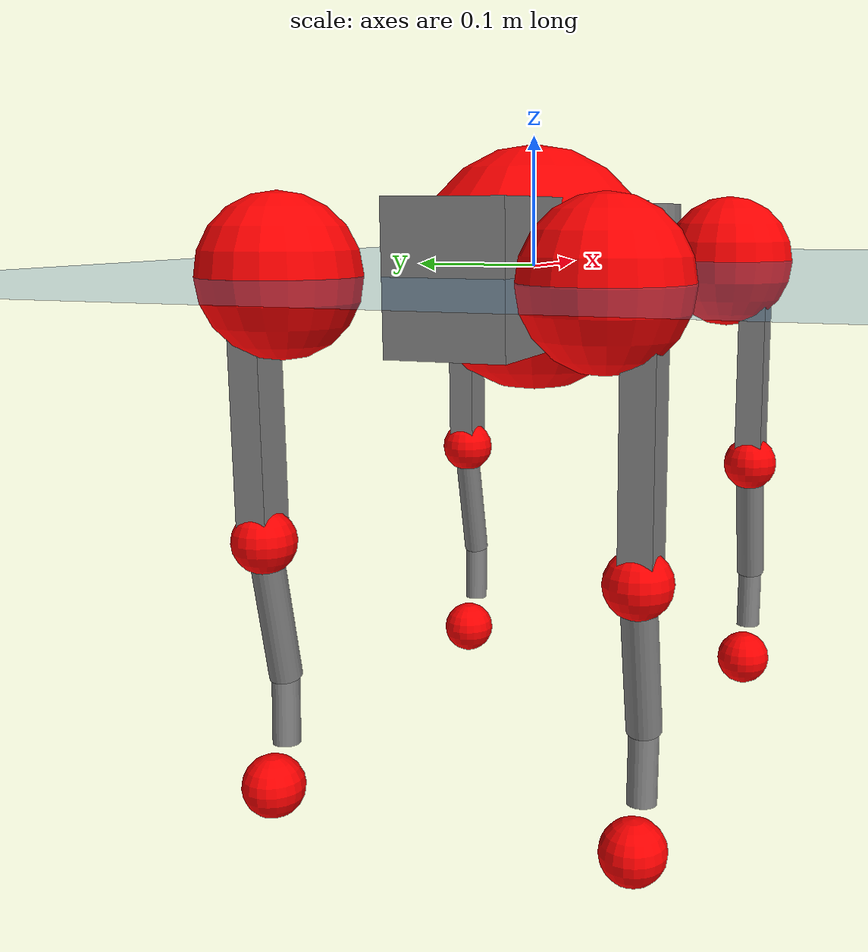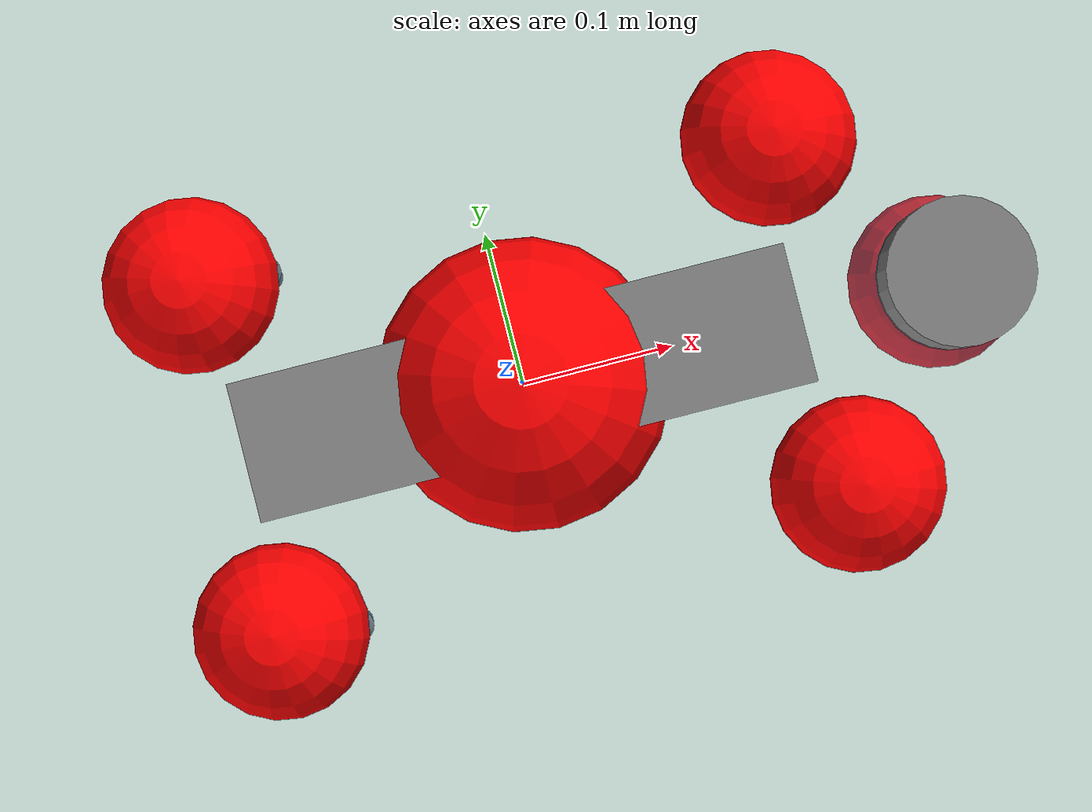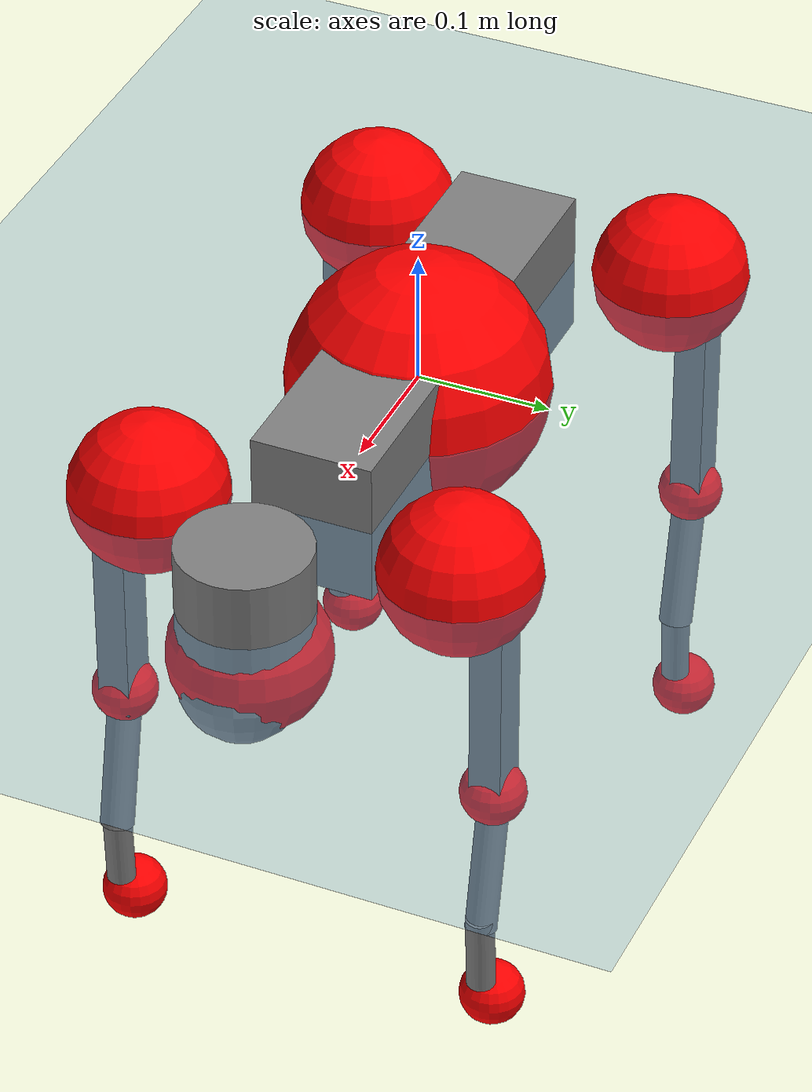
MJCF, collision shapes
<mujoco model="go2">
  <compiler angle="radian" assetdir="assets" balanceinertia="true" inertiafromgeom="false"/>

  <option timestep="0.005" density="1.2" viscosity="2e-05"/>

  <size nkey="1"/>

  <visual>
    <quality shadowsize="8192"/>
    <map shadowclip="0.5"/>
  </visual>

  <default>
    <default class="/">
      <geom contype="0" conaffinity="0" group="1" solref="-1000 -80"/>
      <site size="0.01 0.005 0.005" group="5"/>
      <general forcelimited="true" biastype="affine" gainprm="20" biasprm="0 -20 -0.5"/>
      <default class="go2">
        <joint armature="0.01" damping="0.01" frictionloss="0.2"/>
        <geom condim="1" margin="0.001"/>
        <default class="visual">
          <geom type="mesh" group="2"/>
        </default>
        <default class="collision">
          <geom group="3"/>
          <default class="foot">
            <geom size="0.022 0 0" condim="6" priority="1" friction="0.8 0.02 0.01" solimp="0.015 1 0.022"/>
          </default>
        </default>
        <default class="reward_collision_sphere">
          <geom group="5" rgba="1 0 0 1"/>
        </default>
      </default>
    </default>
  </default>

  <asset>
    <texture type="skybox" colorspace="auto" name="//unnamed_texture_0" builtin="gradient" rgb1="0.95 0.95 0.95" rgb2="0.95 0.95 0.95" width="100" height="600"/>
    <texture type="2d" colorspace="auto" name="texplane" builtin="checker" rgb1="0.345 0.575 0.748" rgb2="0.345 0.575 0.748" markrgb="1 1 1" width="512" height="512"/>
    <material name="MatPlane" class="/" texture="texplane" texuniform="true" texrepeat="2 2" specular="0.9"/>
    <material name="metal" class="/" rgba="0.9 0.95 0.95 1"/>
    <material name="black" class="/" rgba="0 0 0 1"/>
    <material name="white" class="/"/>
    <material name="gray" class="/" rgba="0.671705 0.692426 0.77427 1"/>
    <mesh name="base_0" class="/" file="base_0.obj"/>
    <mesh name="base_1" class="/" file="base_1.obj"/>
    <mesh name="base_2" class="/" file="base_2.obj"/>
    <mesh name="base_3" class="/" file="base_3.obj"/>
    <mesh name="base_4" class="/" file="base_4.obj"/>
    <mesh name="hip_0" class="/" file="hip_0.obj"/>
    <mesh name="hip_1" class="/" file="hip_1.obj"/>
    <mesh name="thigh_0" class="/" file="thigh_0.obj"/>
    <mesh name="thigh_1" class="/" file="thigh_1.obj"/>
    <mesh name="thigh_mirror_0" class="/" file="thigh_mirror_0.obj"/>
    <mesh name="thigh_mirror_1" class="/" file="thigh_mirror_1.obj"/>
    <mesh name="calf_0" class="/" file="calf_0.obj"/>
    <mesh name="calf_1" class="/" file="calf_1.obj"/>
    <mesh name="calf_mirror_0" class="/" file="calf_mirror_0.obj"/>
    <mesh name="calf_mirror_1" class="/" file="calf_mirror_1.obj"/>
    <mesh name="foot" class="/" file="foot.obj"/>
  </asset>

  <worldbody>
    <geom name="floor" class="/" size="100 100 0.125" type="plane" group="0" material="MatPlane"/>
    <light name="toplight_shadow" class="/" pos="0 0 5" dir="0.0990148 0.0990148 -0.990148" type="directional" ambient="0.04 0.04 0.04" diffuse="0.55 0.55 0.55" specular="0.12 0.12 0.12"/>
    <light name="toplight_fill" class="/" pos="0 0 5" dir="0.0990148 0.0990148 -0.990148" type="directional" castshadow="false" ambient="0.04 0.04 0.04" diffuse="0.3 0.3 0.3" specular="0.08 0.08 0.08"/>
    <body name="trunk" childclass="go2" pos="0.00016027 -0.00021494 -0.00247629" quat="0.999999 -0.000492315 0.00101548 0.000188973">
      <inertial pos="0.0210965 0.00194794 -0.00477844" quat="-0.0110108 0.712181 0.00103822 0.701909" mass="6.31201" diaginertia="0.11391 0.101111 0.0140111"/>
      <joint name="//unnamed_joint_0" type="free" armature="0" damping="0" frictionloss="0"/>
      <geom name="//unnamed_geom_1" class="visual" material="black" mesh="base_0"/>
      <geom name="//unnamed_geom_2" class="visual" material="black" mesh="base_1"/>
      <geom name="//unnamed_geom_3" class="visual" material="black" mesh="base_2"/>
      <geom name="//unnamed_geom_4" class="visual" material="white" mesh="base_3"/>
      <geom name="//unnamed_geom_5" class="visual" material="gray" mesh="base_4"/>
      <geom name="trunk_1" class="collision" size="0.181415 0.0450885 0.0549742" type="box"/>
      <geom name="trunk_2" class="collision" size="0.048223 0.0434007" pos="0.286952 0 0.00888198" type="cylinder"/>
      <geom name="trunk_3" class="collision" size="0.0453296" pos="0.295007 0 -0.0532919"/>
      <geom name="//unnamed_geom_9" class="reward_collision_sphere" size="0.096446"/>
      <geom name="//unnamed_geom_10" class="reward_collision_sphere" size="0.0578676" pos="0.281918 0 -0.0399689"/>
      <site name="imu" pos="-0.0283559 0.00087198 0.030314" size="0.0096446"/>
      <camera name="track" pos="0 -1.99667 0" quat="0.707107 0.707107 0 0" mode="trackcom"/>
      <camera name="ego_camera" pos="0.314137 0 0.0399689" quat="-0.5 -0.5 0.5 0.5"/>
      <body name="FL_hip" pos="0.194398 0.0464828 0.000917236" quat="1 0.000103525 0.000136826 3.17961e-05">
        <inertial pos="-0.00736645 0.00197178 -0.00249802" quat="0.505866 0.493415 0.507823 0.492704" mass="0.607995" diaginertia="0.000927074 0.000597972 0.000264625"/>
        <joint name="FL_hip_joint" pos="0 0 0" axis="0.999976 0.00607444 -0.00330179" range="-1.04823 1.04685" armature="0.0096904" damping="0" frictionloss="0.191315"/>
        <geom name="//unnamed_geom_11" class="visual" material="metal" mesh="hip_0"/>
        <geom name="//unnamed_geom_12" class="visual" material="gray" mesh="hip_1"/>
        <geom name="//unnamed_geom_13" class="collision" size="0.0443652 0.0192892" pos="0 0.0798666 0" quat="0.707107 0.707107 0 0" type="cylinder"/>
        <geom name="//unnamed_geom_14" class="reward_collision_sphere" size="0.0578676" pos="0 0.0698833 0"/>
        <body name="FL_thigh" pos="-0.00257418 0.0947546 0.00236351" quat="1 -2.28733e-05 9.67768e-05 -4.39354e-05">
          <inertial pos="-0.00490518 -0.0223145 -0.0294703" quat="0.828802 0.0897453 -0.0187168 0.55198" mass="0.997662" diaginertia="0.00595644 0.00565548 0.000464216"/>
          <joint name="FL_thigh_joint" pos="0 0 0" axis="0.00445313 0.999986 -0.00269116" stiffness="0.00545874" range="-1.56843 3.49747" armature="0.00915941" damping="0.0126191" frictionloss="0.19282"/>
          <geom name="//unnamed_geom_15" class="visual" material="metal" mesh="thigh_0"/>
          <geom name="//unnamed_geom_16" class="visual" material="gray" mesh="thigh_1"/>
          <geom name="//unnamed_geom_17" class="collision" size="0.102715 0.0118146 0.0163958" pos="0 0 -0.0945931" quat="0.707107 0 0.707107 0" type="box"/>
          <body name="FL_calf" pos="-0.000379209 -0.000138373 -0.189347" quat="1 -3.14566e-05 -2.93793e-05 4.37071e-05">
            <inertial pos="0.00380072 -0.00285824 -0.124636" quat="0.709217 0.00198255 -0.00388837 0.704977" mass="0.214881" diaginertia="0.00149382 0.00145419 2.9368e-05"/>
            <joint name="FL_calf_joint" pos="0 0 0" axis="0.00323737 0.999995 -0.000293815" stiffness="0.00463606" range="-2.77559 -0.830965" armature="0.00994522" damping="0.00952298" frictionloss="0.217366"/>
            <geom name="//unnamed_geom_18" class="visual" material="gray" mesh="calf_0"/>
            <geom name="//unnamed_geom_19" class="visual" material="black" mesh="calf_1"/>
            <geom name="FL_calf0" class="collision" size="0.0115735 0.0578676" pos="0.00805479 0 -0.0532919" quat="0.994493 0 -0.104807 0" type="cylinder"/>
            <geom name="//unnamed_geom_21" class="collision" size="0.0106091 0.0313449" pos="0.020137 0 -0.131453" quat="0.999688 0 0.0249974 0" type="cylinder"/>
            <geom name="//unnamed_geom_22" class="visual" pos="0 0 -0.189186" quat="1 0 0 0" material="black" mesh="foot"/>
            <geom name="FL_foot" class="foot" size="0.0166085" pos="-0.0020137 0 -0.189186"/>
            <geom name="//unnamed_geom_24" class="reward_collision_sphere" size="0.0241115"/>
            <geom name="//unnamed_geom_25" class="reward_collision_sphere" size="0.0241115" pos="-0.0020137 0 -0.189186"/>
            <site name="FL_foot" class="foot" pos="-0.0020137 0 -0.189186" size="0.0096446"/>
          </body>
        </body>
      </body>
      <body name="FR_hip" pos="0.195434 -0.0466931 0.000277313" quat="0.999999 -0.000869009 0.000883967 0.00062762">
        <inertial pos="-0.00434704 -0.0019715 -1.42671e-06" quat="0.489132 0.503881 0.501744 0.505082" mass="0.635501" diaginertia="0.000922194 0.000599343 0.000268805"/>
        <joint name="FR_hip_joint" pos="0 0 0" axis="0.999999 0.00147559 -0.000656849" range="-1.09927 1.05142" armature="0.00923407" damping="0.00502837" frictionloss="0.198741"/>
        <geom name="//unnamed_geom_26" class="visual" pos="0 9.59451e-10 4.11528e-08" quat="4.63268e-05 1 0 0" material="metal" mesh="hip_0"/>
        <geom name="//unnamed_geom_27" class="visual" pos="0 1.55538e-09 -1.01787e-07" quat="4.63268e-05 1 0 0" material="gray" mesh="hip_1"/>
        <geom name="//unnamed_geom_28" class="collision" size="0.0443652 0.0192892" pos="0 -0.0798666 0" quat="0.707107 0.707107 0 0" type="cylinder"/>
        <geom name="//unnamed_geom_29" class="reward_collision_sphere" size="0.0578676" pos="0 -0.0698833 0"/>
        <body name="FR_thigh" pos="0.00011083 -0.0958748 0.00220011" quat="1 0.000136519 -1.59302e-05 -1.39556e-05">
          <inertial pos="-0.00290732 0.0225752 -0.0278434" quat="0.54901 -0.0229322 0.0821115 0.831457" mass="1.05089" diaginertia="0.00617834 0.00567283 0.000481466"/>
          <joint name="FR_thigh_joint" pos="0 0 0" axis="-0.00520863 -0.999986 0.000169854" stiffness="0.00878766" range="-3.49253 1.56597" armature="0.00999505" damping="0.00393834" frictionloss="0.178537"/>
          <geom name="//unnamed_geom_30" class="visual" material="metal" mesh="thigh_mirror_0"/>
          <geom name="//unnamed_geom_31" class="visual" material="gray" mesh="thigh_mirror_1"/>
          <geom name="//unnamed_geom_32" class="collision" size="0.102715 0.0118146 0.0163958" pos="0 0 -0.0945931" quat="0.707107 0 0.707107 0" type="box"/>
          <body name="FR_calf" pos="-0.00281516 -0.000475528 -0.187401" quat="1 0.000178822 -0.000161959 0.000106897">
            <inertial pos="0.0072805 -0.00142807 -0.124176" quat="0.711853 -0.00878075 0.00346277 0.702265" mass="0.21102" diaginertia="0.00148863 0.00144636 2.83738e-05"/>
            <joint name="FR_calf_joint" pos="0 0 0" axis="-4.2638e-05 -1 6.88993e-05" stiffness="0.00463053" range="0.836627 2.71324" armature="0.00968508" damping="0.000255503" frictionloss="0.196795"/>
            <geom name="//unnamed_geom_33" class="visual" material="gray" mesh="calf_mirror_0"/>
            <geom name="//unnamed_geom_34" class="visual" material="black" mesh="calf_mirror_1"/>
            <geom name="FR_calf0" class="collision" size="0.012538 0.0578676" pos="0.0100685 0 -0.0532919" quat="0.995004 0 -0.0998334 0" type="cylinder"/>
            <geom name="//unnamed_geom_36" class="collision" size="0.0106091 0.0313449" pos="0.020137 0 -0.131453" quat="0.999688 0 0.0249974 0" type="cylinder"/>
            <geom name="//unnamed_geom_37" class="visual" pos="0 0 -0.189186" quat="1 0 0 0" material="black" mesh="foot"/>
            <geom name="FR_foot" class="foot" size="0.0211974" pos="-0.0020137 0 -0.189186"/>
            <geom name="//unnamed_geom_39" class="reward_collision_sphere" size="0.0241115"/>
            <geom name="//unnamed_geom_40" class="reward_collision_sphere" size="0.0241115" pos="-0.0020137 0 -0.189186"/>
            <site name="FR_foot" class="foot" pos="-0.0020137 0 -0.189186" size="0.0096446"/>
          </body>
        </body>
      </body>
      <body name="RL_hip" pos="-0.194272 0.0457339 0.00134175" quat="1 7.77954e-07 8.47096e-06 8.14845e-06">
        <inertial pos="0.00629054 0.000348423 -0.00233791" quat="0.50909 0.496227 0.496792 0.497779" mass="0.604564" diaginertia="0.000918056 0.000583719 0.000260235"/>
        <joint name="RL_hip_joint" pos="0 0 0" axis="-0.999901 -0.00570893 -0.0128636" range="-1.0896 1.08896" armature="0.0105602" damping="0.0127761" frictionloss="0.191327"/>
        <geom name="//unnamed_geom_41" class="visual" pos="-1.03364e-09 0 -2.02618e-07" quat="4.63268e-05 0 1 0" material="metal" mesh="hip_0"/>
        <geom name="//unnamed_geom_42" class="visual" pos="-1.67566e-09 0 -1.79693e-07" quat="4.63268e-05 0 1 0" material="gray" mesh="hip_1"/>
        <geom name="//unnamed_geom_43" class="collision" size="0.0443652 0.0192892" pos="0 0.0798666 0" quat="0.707107 0.707107 0 0" type="cylinder"/>
        <geom name="//unnamed_geom_44" class="reward_collision_sphere" size="0.0578676" pos="0 0.0698833 0"/>
        <body name="RL_thigh" pos="0.00052386 0.0931557 0.000859727" quat="1 -0.000106917 0.000429541 0.000382108">
          <inertial pos="-0.00117396 -0.0231646 -0.0316241" quat="0.829534 0.0849057 -0.0203445 0.551589" mass="1.06054" diaginertia="0.0065364 0.0059761 0.000506789"/>
          <joint name="RL_thigh_joint" pos="0 0 0" axis="-0.0191656 0.999809 0.0038355" stiffness="0.00306919" range="-0.535527 4.54488" armature="0.0099134" damping="0.00213937" frictionloss="0.187276"/>
          <geom name="//unnamed_geom_45" class="visual" material="metal" mesh="thigh_0"/>
          <geom name="//unnamed_geom_46" class="visual" material="gray" mesh="thigh_1"/>
          <geom name="//unnamed_geom_47" class="collision" size="0.102715 0.0118146 0.0163958" pos="0 0 -0.0945931" quat="0.707107 0 0.707107 0" type="box"/>
          <body name="RL_calf" pos="-0.00100795 -0.00145405 -0.190987" quat="1 2.88174e-05 -0.000212927 0.000602691">
            <inertial pos="0.00387635 0.00067941 -0.128022" quat="0.710695 -0.00441329 -0.01358 0.703355" mass="0.215014" diaginertia="0.00152602 0.00143751 2.87333e-05"/>
            <joint name="RL_calf_joint" pos="0 0 0" axis="0.00472577 0.999959 0.00770238" stiffness="0.00383952" range="-2.72429 -0.887881" armature="0.0107265" damping="0" frictionloss="0.191151"/>
            <geom name="//unnamed_geom_48" class="visual" material="gray" mesh="calf_0"/>
            <geom name="//unnamed_geom_49" class="visual" material="black" mesh="calf_1"/>
            <geom name="RL_calf0" class="collision" size="0.012538 0.0578676" pos="0.0100685 0 -0.0532919" quat="0.995004 0 -0.0998334 0" type="cylinder"/>
            <geom name="//unnamed_geom_51" class="collision" size="0.0106091 0.0313449" pos="0.020137 0 -0.131453" quat="0.999688 0 0.0249974 0" type="cylinder"/>
            <geom name="//unnamed_geom_52" class="visual" pos="0 0 -0.189186" quat="1 0 0 0" material="black" mesh="foot"/>
            <geom name="RL_foot" class="foot" size="0.0191544" pos="-0.0020137 0 -0.189186"/>
            <geom name="//unnamed_geom_54" class="reward_collision_sphere" size="0.0241115"/>
            <geom name="//unnamed_geom_55" class="reward_collision_sphere" size="0.0241115" pos="-0.0020137 0 -0.189186"/>
            <site name="RL_foot" class="foot" pos="-0.0020137 0 -0.189186" size="0.0096446"/>
          </body>
        </body>
      </body>
      <body name="RR_hip" pos="-0.192136 -0.0472327 -0.000196628" quat="1 -1.14063e-05 4.36906e-06 -1.20784e-05">
        <inertial pos="0.00382923 -0.0022424 0.00031647" quat="0.496611 0.496763 0.492036 0.514301" mass="0.606941" diaginertia="0.000970797 0.000609035 0.000272996"/>
        <joint name="RR_hip_joint" pos="0 0 0" axis="-0.999912 0.00508026 -0.0122356" stiffness="0.000899271" range="-1.03609 1.04832" armature="0.00967776" damping="0.00744607" frictionloss="0.217551"/>
        <geom name="//unnamed_geom_56" class="visual" pos="1.03335e-09 9.59451e-10 -2.4377e-07" quat="2.14617e-09 4.63268e-05 4.63268e-05 -1" material="metal" mesh="hip_0"/>
        <geom name="//unnamed_geom_57" class="visual" pos="1.67639e-09 1.55538e-09 -7.79063e-08" quat="2.14617e-09 4.63268e-05 4.63268e-05 -1" material="gray" mesh="hip_1"/>
        <geom name="//unnamed_geom_58" class="collision" size="0.0443652 0.0192892" pos="0 -0.0798666 0" quat="0.707107 0.707107 0 0" type="cylinder"/>
        <geom name="//unnamed_geom_59" class="reward_collision_sphere" size="0.0578676" pos="0 -0.0698833 0"/>
        <body name="RR_thigh" pos="0.00113414 -0.0955022 -0.00193576" quat="1 -5.05319e-05 -0.000271921 -0.000215029">
          <inertial pos="-0.00223297 0.0230587 -0.0310118" quat="0.55047 -0.0228313 0.0832947 0.830376" mass="1.01379" diaginertia="0.00638667 0.00589328 0.000486974"/>
          <joint name="RR_thigh_joint" pos="0 0 0" axis="0.00453351 -0.99999 0.000437102" stiffness="0.00181469" range="-4.53931 0.49675" armature="0.00950075" damping="0.0160395" frictionloss="0.202273"/>
          <geom name="//unnamed_geom_60" class="visual" material="metal" mesh="thigh_mirror_0"/>
          <geom name="//unnamed_geom_61" class="visual" material="gray" mesh="thigh_mirror_1"/>
          <geom name="//unnamed_geom_62" class="collision" size="0.102715 0.0118146 0.0163958" pos="0 0 -0.0945931" quat="0.707107 0 0.707107 0" type="box"/>
          <body name="RR_calf" pos="-0.00169596 0.00122457 -0.191357" quat="0.999999 0.000448407 -0.000621443 -0.000968915">
            <inertial pos="0.00518908 0.000406985 -0.125395" quat="0.702157 -0.0133131 0.00802207 0.711852" mass="0.218911" diaginertia="0.00155275 0.00145408 2.86447e-05"/>
            <joint name="RR_calf_joint" pos="0 0 0" axis="-0.000104977 -0.999885 0.015177" range="0.876559 2.74552" armature="0.00950622" damping="0.00368341" frictionloss="0.202656"/>
            <geom name="//unnamed_geom_63" class="visual" material="gray" mesh="calf_mirror_0"/>
            <geom name="//unnamed_geom_64" class="visual" material="black" mesh="calf_mirror_1"/>
            <geom name="RR_calf0" class="collision" size="0.012538 0.0578676" pos="0.0100685 0 -0.0532919" quat="0.995004 0 -0.0998334 0" type="cylinder"/>
            <geom name="//unnamed_geom_66" class="collision" size="0.0106091 0.0313449" pos="0.020137 0 -0.131453" quat="0.999688 0 0.0249974 0" type="cylinder"/>
            <geom name="//unnamed_geom_67" class="visual" pos="0 0 -0.189186" quat="1 0 0 0" material="black" mesh="foot"/>
            <geom name="RR_foot" class="foot" size="0.0239472" pos="-0.0020137 0 -0.189186"/>
            <geom name="//unnamed_geom_69" class="reward_collision_sphere" size="0.0241115"/>
            <geom name="//unnamed_geom_70" class="reward_collision_sphere" size="0.0241115" pos="-0.0020137 0 -0.189186"/>
            <site name="RR_foot" class="foot" pos="-0.0020137 0 -0.189186" size="0.0096446"/>
          </body>
        </body>
      </body>
    </body>
  </worldbody>

  <contact>
    <pair class="/" geom1="floor" geom2="FL_foot" name="//unnamed_contact_0"/>
    <pair class="/" geom1="floor" geom2="FR_foot" name="//unnamed_contact_1"/>
    <pair class="/" geom1="floor" geom2="RL_foot" name="//unnamed_contact_2"/>
    <pair class="/" geom1="floor" geom2="RR_foot" name="//unnamed_contact_3"/>
  </contact>

  <actuator>
    <general name="FL_hip" class="/" joint="FL_hip_joint" forcerange="-22.7666 22.7666" gainprm="19.0238" biasprm="0 -19.0238 -0.496638"/>
    <general name="FL_thigh" class="/" joint="FL_thigh_joint" forcerange="-22.6411 22.6411" gainprm="19.0238" biasprm="0 -19.0238 -0.496638"/>
    <general name="FL_calf" class="/" joint="FL_calf_joint" forcerange="-43.9171 43.9171" gainprm="19.0238" biasprm="0 -19.0238 -0.496638"/>
    <general name="FR_hip" class="/" joint="FR_hip_joint" forcerange="-23.0531 23.0531" gainprm="19.0238" biasprm="0 -19.0238 -0.496638"/>
    <general name="FR_thigh" class="/" joint="FR_thigh_joint" forcerange="-22.8115 22.8115" gainprm="19.0238" biasprm="0 -19.0238 -0.496638"/>
    <general name="FR_calf" class="/" joint="FR_calf_joint" forcerange="-44.196 44.196" gainprm="19.0238" biasprm="0 -19.0238 -0.496638"/>
    <general name="RL_hip" class="/" joint="RL_hip_joint" forcerange="-22.9919 22.9919" gainprm="19.0238" biasprm="0 -19.0238 -0.496638"/>
    <general name="RL_thigh" class="/" joint="RL_thigh_joint" forcerange="-20.8081 20.8081" gainprm="19.0238" biasprm="0 -19.0238 -0.496638"/>
    <general name="RL_calf" class="/" joint="RL_calf_joint" forcerange="-47.3768 47.3768" gainprm="19.0238" biasprm="0 -19.0238 -0.496638"/>
    <general name="RR_hip" class="/" joint="RR_hip_joint" forcerange="-22.8096 22.8096" gainprm="19.0238" biasprm="0 -19.0238 -0.496638"/>
    <general name="RR_thigh" class="/" joint="RR_thigh_joint" forcerange="-23.6797 23.6797" gainprm="19.0238" biasprm="0 -19.0238 -0.496638"/>
    <general name="RR_calf" class="/" joint="RR_calf_joint" forcerange="-44.6605 44.6605" gainprm="19.0238" biasprm="0 -19.0238 -0.496638"/>
  </actuator>

  <sensor>
    <gyro site="imu" name="imu_angular_velocity"/>
    <velocimeter site="imu" name="imu_linear_velocity"/>
    <framelinvel objtype="site" objname="FL_foot" name="FL_foot_global_linear_velocity"/>
    <framelinvel objtype="site" objname="FR_foot" name="FR_foot_global_linear_velocity"/>
    <framelinvel objtype="site" objname="RL_foot" name="RL_foot_global_linear_velocity"/>
    <framelinvel objtype="site" objname="RR_foot" name="RR_foot_global_linear_velocity"/>
  </sensor>

  <keyframe>
    <key name="home" qpos="0 0 0.325 1 0 0 0 0.1 0.8 -1.5 -0.1 -0.8 1.5 -0.1 0.8 -1.5 0.1 -0.8 1.5"/>
  </keyframe>
</mujoco>
